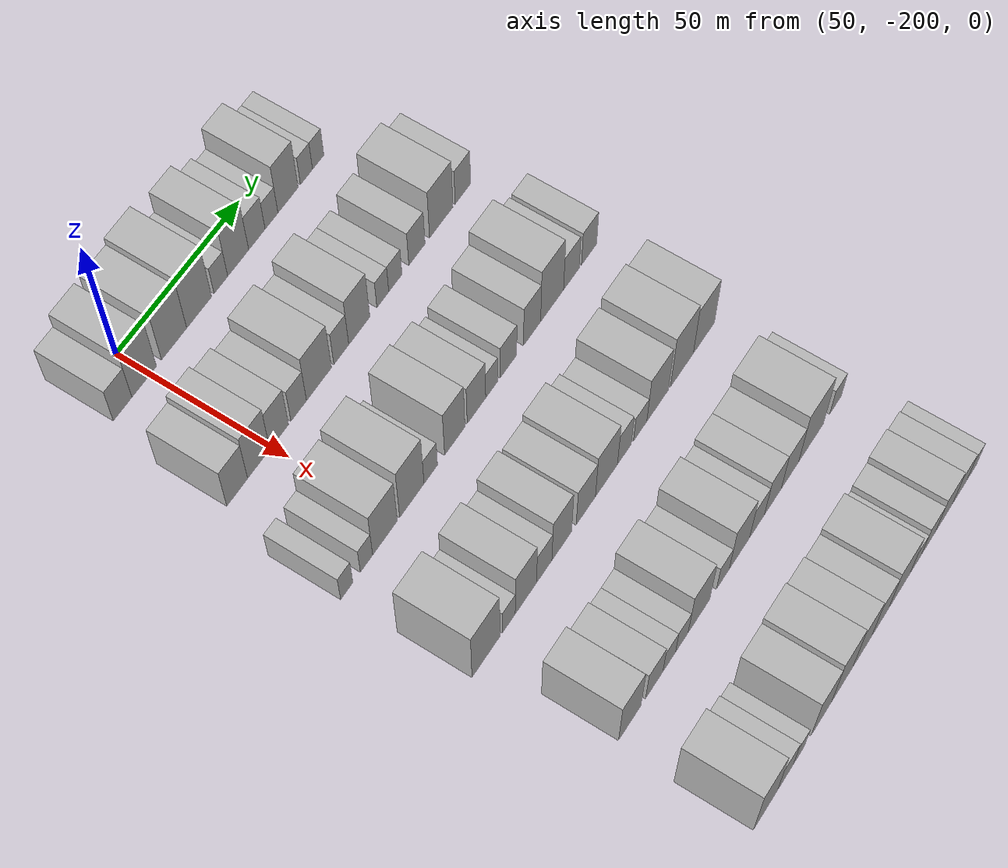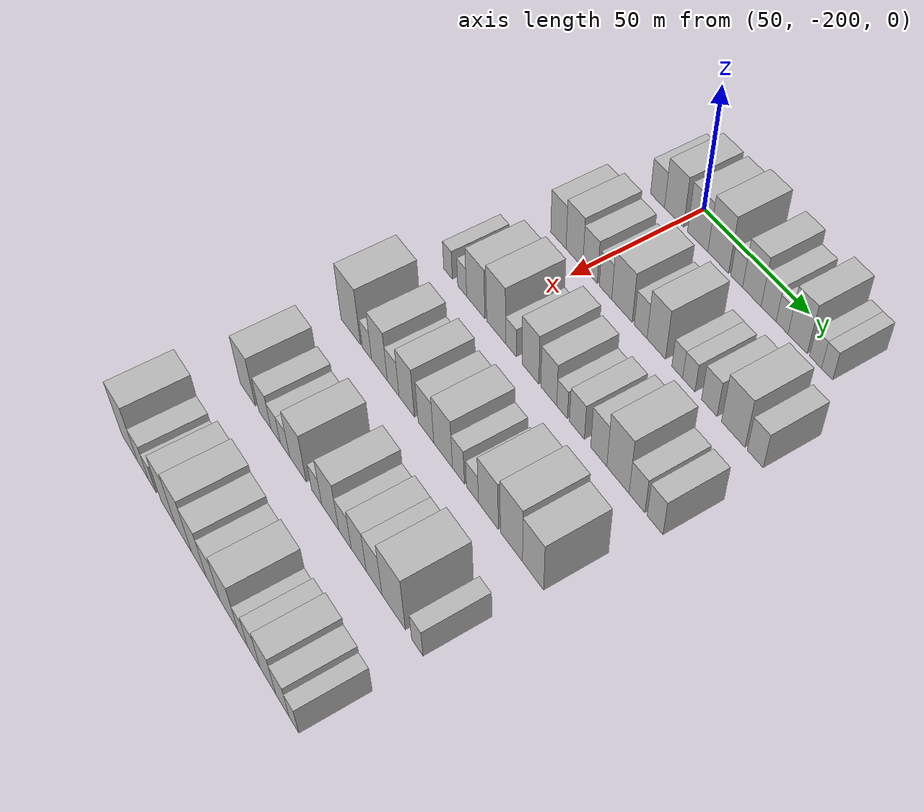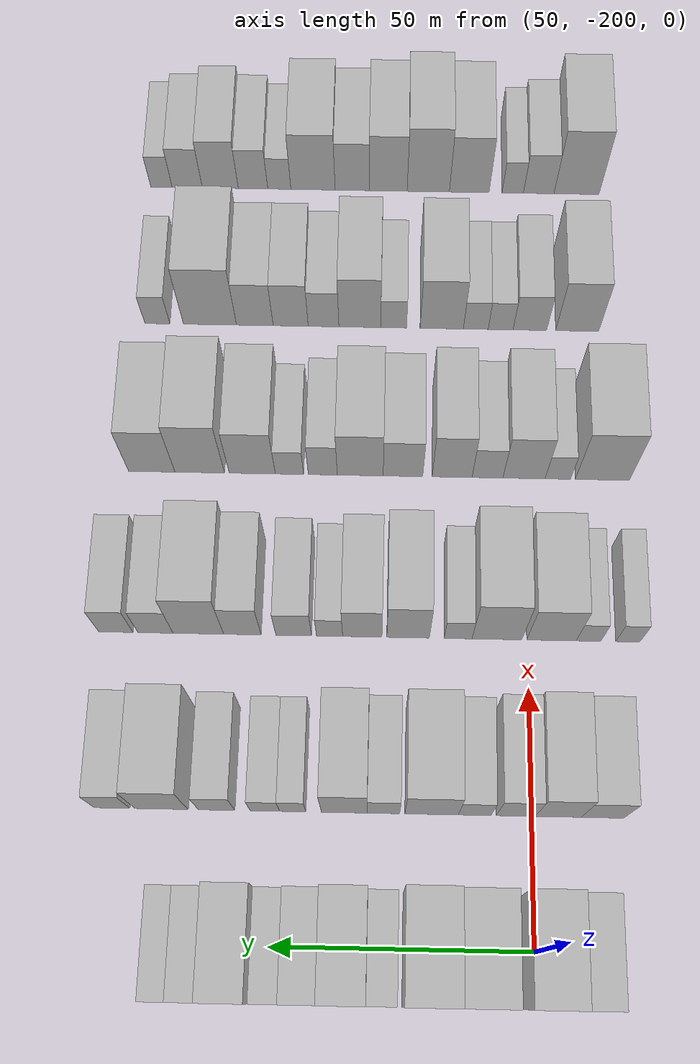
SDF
<sdf version="1.6">
 <world name="default">
  <model name="building_35">
   <static>1</static>
   <pose>50.0000 -210.8692 0 0.000000 0.000000 0.000000</pose>
   <link name="link">
    <pose>0 0 7.50 0 0 0</pose>
    <collision name="collision"><geometry><box><size>20.0000 7.2609 15.0000</size></box></geometry></collision>
    <visual name="visual">
     <cast_shadows>0</cast_shadows>
     <geometry><box><size>20.0000 7.2609 15.0000</size></box></geometry>
     <material>
      <script>
       <uri>model://HANNAS_wall/materials/scripts</uri>
       <uri>model://HANNAS_wall/materials/textures</uri>
       <name>vrc/HANNAS_wall</name>
      </script>
     </material>
    </visual>
   </link>
  </model>
  <model name="building_36">
   <static>1</static>
   <pose>50.0000 -202.3744 0 0.000000 0.000000 0.000000</pose>
   <link name="link">
    <pose>0 0 10.50 0 0 0</pose>
    <collision name="collision"><geometry><box><size>20.0000 9.7287 21.0000</size></box></geometry></collision>
    <visual name="visual">
     <cast_shadows>0</cast_shadows>
     <geometry><box><size>20.0000 9.7287 21.0000</size></box></geometry>
     <material>
      <script>
       <uri>model://HANNAS_wall/materials/scripts</uri>
       <uri>model://HANNAS_wall/materials/textures</uri>
       <name>vrc/HANNAS_wall</name>
      </script>
     </material>
    </visual>
   </link>
  </model>
  <model name="building_37">
   <static>1</static>
   <pose>50.0000 -190.4568 0 0.000000 0.000000 0.000000</pose>
   <link name="link">
    <pose>0 0 10.50 0 0 0</pose>
    <collision name="collision"><geometry><box><size>20.0000 10.1066 21.0000</size></box></geometry></collision>
    <visual name="visual">
     <cast_shadows>0</cast_shadows>
     <geometry><box><size>20.0000 10.1066 21.0000</size></box></geometry>
     <material>
      <script>
       <uri>model://HANNAS_wall/materials/scripts</uri>
       <uri>model://HANNAS_wall/materials/textures</uri>
       <name>vrc/HANNAS_wall</name>
      </script>
     </material>
    </visual>
   </link>
  </model>
  <model name="building_38">
   <static>1</static>
   <pose>50.0000 -180.3454 0 0.000000 0.000000 0.000000</pose>
   <link name="link">
    <pose>0 0 12.00 0 0 0</pose>
    <collision name="collision"><geometry><box><size>20.0000 10.1160 24.0000</size></box></geometry></collision>
    <visual name="visual">
     <cast_shadows>0</cast_shadows>
     <geometry><box><size>20.0000 10.1160 24.0000</size></box></geometry>
     <material>
      <script>
       <uri>model://HANNAS_wall/materials/scripts</uri>
       <uri>model://HANNAS_wall/materials/textures</uri>
       <name>vrc/HANNAS_wall</name>
      </script>
     </material>
    </visual>
   </link>
  </model>
  <model name="building_39">
   <static>1</static>
   <pose>50.0000 -171.4707 0 0.000000 0.000000 0.000000</pose>
   <link name="link">
    <pose>0 0 6.00 0 0 0</pose>
    <collision name="collision"><geometry><box><size>20.0000 5.6335 12.0000</size></box></geometry></collision>
    <visual name="visual">
     <cast_shadows>0</cast_shadows>
     <geometry><box><size>20.0000 5.6335 12.0000</size></box></geometry>
     <material>
      <script>
       <uri>model://HANNAS_wall/materials/scripts</uri>
       <uri>model://HANNAS_wall/materials/textures</uri>
       <name>vrc/HANNAS_wall</name>
      </script>
     </material>
    </visual>
   </link>
  </model>
  <model name="building_40">
   <static>1</static>
   <pose>50.0000 -164.3087 0 0.000000 0.000000 0.000000</pose>
   <link name="link">
    <pose>0 0 10.50 0 0 0</pose>
    <collision name="collision"><geometry><box><size>20.0000 8.6905 21.0000</size></box></geometry></collision>
    <visual name="visual">
     <cast_shadows>0</cast_shadows>
     <geometry><box><size>20.0000 8.6905 21.0000</size></box></geometry>
     <material>
      <script>
       <uri>model://HANNAS_wall/materials/scripts</uri>
       <uri>model://HANNAS_wall/materials/textures</uri>
       <name>vrc/HANNAS_wall</name>
      </script>
     </material>
    </visual>
   </link>
  </model>
  <model name="building_41">
   <static>1</static>
   <pose>50.0000 -156.5307 0 0.000000 0.000000 0.000000</pose>
   <link name="link">
    <pose>0 0 7.50 0 0 0</pose>
    <collision name="collision"><geometry><box><size>20.0000 6.8655 15.0000</size></box></geometry></collision>
    <visual name="visual">
     <cast_shadows>0</cast_shadows>
     <geometry><box><size>20.0000 6.8655 15.0000</size></box></geometry>
     <material>
      <script>
       <uri>model://HANNAS_wall/materials/scripts</uri>
       <uri>model://HANNAS_wall/materials/textures</uri>
       <name>vrc/HANNAS_wall</name>
      </script>
     </material>
    </visual>
   </link>
  </model>
  <model name="building_42">
   <static>1</static>
   <pose>50.0000 -150.3775 0 0.000000 0.000000 0.000000</pose>
   <link name="link">
    <pose>0 0 6.00 0 0 0</pose>
    <collision name="collision"><geometry><box><size>20.0000 5.4410 12.0000</size></box></geometry></collision>
    <visual name="visual">
     <cast_shadows>0</cast_shadows>
     <geometry><box><size>20.0000 5.4410 12.0000</size></box></geometry>
     <material>
      <script>
       <uri>model://HANNAS_wall/materials/scripts</uri>
       <uri>model://HANNAS_wall/materials/textures</uri>
       <name>vrc/HANNAS_wall</name>
      </script>
     </material>
    </visual>
   </link>
  </model>
  <model name="building_43">
   <static>1</static>
   <pose>50.0000 -143.3765 0 0.000000 0.000000 0.000000</pose>
   <link name="link">
    <pose>0 0 10.50 0 0 0</pose>
    <collision name="collision"><geometry><box><size>20.0000 8.5609 21.0000</size></box></geometry></collision>
    <visual name="visual">
     <cast_shadows>0</cast_shadows>
     <geometry><box><size>20.0000 8.5609 21.0000</size></box></geometry>
     <material>
      <script>
       <uri>model://HANNAS_wall/materials/scripts</uri>
       <uri>model://HANNAS_wall/materials/textures</uri>
       <name>vrc/HANNAS_wall</name>
      </script>
     </material>
    </visual>
   </link>
  </model>
  <model name="building_44">
   <static>1</static>
   <pose>50.0000 -135.4817 0 0.000000 0.000000 0.000000</pose>
   <link name="link">
    <pose>0 0 6.00 0 0 0</pose>
    <collision name="collision"><geometry><box><size>20.0000 5.2288 12.0000</size></box></geometry></collision>
    <visual name="visual">
     <cast_shadows>0</cast_shadows>
     <geometry><box><size>20.0000 5.2288 12.0000</size></box></geometry>
     <material>
      <script>
       <uri>model://HANNAS_wall/materials/scripts</uri>
       <uri>model://HANNAS_wall/materials/textures</uri>
       <name>vrc/HANNAS_wall</name>
      </script>
     </material>
    </visual>
   </link>
  </model>
  <model name="building_45">
   <static>1</static>
   <pose>50.0000 -130.4262 0 0.000000 0.000000 0.000000</pose>
   <link name="link">
    <pose>0 0 6.00 0 0 0</pose>
    <collision name="collision"><geometry><box><size>20.0000 4.8821 12.0000</size></box></geometry></collision>
    <visual name="visual">
     <cast_shadows>0</cast_shadows>
     <geometry><box><size>20.0000 4.8821 12.0000</size></box></geometry>
     <material>
      <script>
       <uri>model://HANNAS_wall/materials/scripts</uri>
       <uri>model://HANNAS_wall/materials/textures</uri>
       <name>vrc/HANNAS_wall</name>
      </script>
     </material>
    </visual>
   </link>
  </model>
  <model name="building_146">
   <static>1</static>
   <pose>85.0000 -213.7189 0 0.000000 0.000000 0.000000</pose>
   <link name="link">
    <pose>0 0 9.00 0 0 0</pose>
    <collision name="collision"><geometry><box><size>20.0000 8.2522 18.0000</size></box></geometry></collision>
    <visual name="visual">
     <cast_shadows>0</cast_shadows>
     <geometry><box><size>20.0000 8.2522 18.0000</size></box></geometry>
     <material>
      <script>
       <uri>model://HANNAS_wall/materials/scripts</uri>
       <uri>model://HANNAS_wall/materials/textures</uri>
       <name>vrc/HANNAS_wall</name>
      </script>
     </material>
    </visual>
   </link>
  </model>
  <model name="building_147">
   <static>1</static>
   <pose>85.0000 -205.1508 0 0.000000 0.000000 0.000000</pose>
   <link name="link">
    <pose>0 0 10.50 0 0 0</pose>
    <collision name="collision"><geometry><box><size>20.0000 8.8841 21.0000</size></box></geometry></collision>
    <visual name="visual">
     <cast_shadows>0</cast_shadows>
     <geometry><box><size>20.0000 8.8841 21.0000</size></box></geometry>
     <material>
      <script>
       <uri>model://HANNAS_wall/materials/scripts</uri>
       <uri>model://HANNAS_wall/materials/textures</uri>
       <name>vrc/HANNAS_wall</name>
      </script>
     </material>
    </visual>
   </link>
  </model>
  <model name="building_148">
   <static>1</static>
   <pose>85.0000 -196.9245 0 0.000000 0.000000 0.000000</pose>
   <link name="link">
    <pose>0 0 9.00 0 0 0</pose>
    <collision name="collision"><geometry><box><size>20.0000 7.5684 18.0000</size></box></geometry></collision>
    <visual name="visual">
     <cast_shadows>0</cast_shadows>
     <geometry><box><size>20.0000 7.5684 18.0000</size></box></geometry>
     <material>
      <script>
       <uri>model://HANNAS_wall/materials/scripts</uri>
       <uri>model://HANNAS_wall/materials/textures</uri>
       <name>vrc/HANNAS_wall</name>
      </script>
     </material>
    </visual>
   </link>
  </model>
  <model name="building_149">
   <static>1</static>
   <pose>85.0000 -188.9642 0 0.000000 0.000000 0.000000</pose>
   <link name="link">
    <pose>0 0 7.50 0 0 0</pose>
    <collision name="collision"><geometry><box><size>20.0000 6.3523 15.0000</size></box></geometry></collision>
    <visual name="visual">
     <cast_shadows>0</cast_shadows>
     <geometry><box><size>20.0000 6.3523 15.0000</size></box></geometry>
     <material>
      <script>
       <uri>model://HANNAS_wall/materials/scripts</uri>
       <uri>model://HANNAS_wall/materials/textures</uri>
       <name>vrc/HANNAS_wall</name>
      </script>
     </material>
    </visual>
   </link>
  </model>
  <model name="building_150">
   <static>1</static>
   <pose>85.0000 -180.6318 0 0.000000 0.000000 0.000000</pose>
   <link name="link">
    <pose>0 0 10.50 0 0 0</pose>
    <collision name="collision"><geometry><box><size>20.0000 10.3125 21.0000</size></box></geometry></collision>
    <visual name="visual">
     <cast_shadows>0</cast_shadows>
     <geometry><box><size>20.0000 10.3125 21.0000</size></box></geometry>
     <material>
      <script>
       <uri>model://HANNAS_wall/materials/scripts</uri>
       <uri>model://HANNAS_wall/materials/textures</uri>
       <name>vrc/HANNAS_wall</name>
      </script>
     </material>
    </visual>
   </link>
  </model>
  <model name="building_151">
   <static>1</static>
   <pose>85.0000 -171.3499 0 0.000000 0.000000 0.000000</pose>
   <link name="link">
    <pose>0 0 7.50 0 0 0</pose>
    <collision name="collision"><geometry><box><size>20.0000 6.2512 15.0000</size></box></geometry></collision>
    <visual name="visual">
     <cast_shadows>0</cast_shadows>
     <geometry><box><size>20.0000 6.2512 15.0000</size></box></geometry>
     <material>
      <script>
       <uri>model://HANNAS_wall/materials/scripts</uri>
       <uri>model://HANNAS_wall/materials/textures</uri>
       <name>vrc/HANNAS_wall</name>
      </script>
     </material>
    </visual>
   </link>
  </model>
  <model name="building_152">
   <static>1</static>
   <pose>85.0000 -163.7788 0 0.000000 0.000000 0.000000</pose>
   <link name="link">
    <pose>0 0 10.50 0 0 0</pose>
    <collision name="collision"><geometry><box><size>20.0000 8.8909 21.0000</size></box></geometry></collision>
    <visual name="visual">
     <cast_shadows>0</cast_shadows>
     <geometry><box><size>20.0000 8.8909 21.0000</size></box></geometry>
     <material>
      <script>
       <uri>model://HANNAS_wall/materials/scripts</uri>
       <uri>model://HANNAS_wall/materials/textures</uri>
       <name>vrc/HANNAS_wall</name>
      </script>
     </material>
    </visual>
   </link>
  </model>
  <model name="building_153">
   <static>1</static>
   <pose>85.0000 -153.7945 0 0.000000 0.000000 0.000000</pose>
   <link name="link">
    <pose>0 0 6.00 0 0 0</pose>
    <collision name="collision"><geometry><box><size>20.0000 5.0777 12.0000</size></box></geometry></collision>
    <visual name="visual">
     <cast_shadows>0</cast_shadows>
     <geometry><box><size>20.0000 5.0777 12.0000</size></box></geometry>
     <material>
      <script>
       <uri>model://HANNAS_wall/materials/scripts</uri>
       <uri>model://HANNAS_wall/materials/textures</uri>
       <name>vrc/HANNAS_wall</name>
      </script>
     </material>
    </visual>
   </link>
  </model>
  <model name="building_154">
   <static>1</static>
   <pose>85.0000 -148.4130 0 0.000000 0.000000 0.000000</pose>
   <link name="link">
    <pose>0 0 6.00 0 0 0</pose>
    <collision name="collision"><geometry><box><size>20.0000 5.6853 12.0000</size></box></geometry></collision>
    <visual name="visual">
     <cast_shadows>0</cast_shadows>
     <geometry><box><size>20.0000 5.6853 12.0000</size></box></geometry>
     <material>
      <script>
       <uri>model://HANNAS_wall/materials/scripts</uri>
       <uri>model://HANNAS_wall/materials/textures</uri>
       <name>vrc/HANNAS_wall</name>
      </script>
     </material>
    </visual>
   </link>
  </model>
  <model name="building_155">
   <static>1</static>
   <pose>85.0000 -139.0477 0 0.000000 0.000000 0.000000</pose>
   <link name="link">
    <pose>0 0 7.50 0 0 0</pose>
    <collision name="collision"><geometry><box><size>20.0000 7.0453 15.0000</size></box></geometry></collision>
    <visual name="visual">
     <cast_shadows>0</cast_shadows>
     <geometry><box><size>20.0000 7.0453 15.0000</size></box></geometry>
     <material>
      <script>
       <uri>model://HANNAS_wall/materials/scripts</uri>
       <uri>model://HANNAS_wall/materials/textures</uri>
       <name>vrc/HANNAS_wall</name>
      </script>
     </material>
    </visual>
   </link>
  </model>
  <model name="building_156">
   <static>1</static>
   <pose>85.0000 -128.3696 0 0.000000 0.000000 0.000000</pose>
   <link name="link">
    <pose>0 0 10.50 0 0 0</pose>
    <collision name="collision"><geometry><box><size>20.0000 10.3109 21.0000</size></box></geometry></collision>
    <visual name="visual">
     <cast_shadows>0</cast_shadows>
     <geometry><box><size>20.0000 10.3109 21.0000</size></box></geometry>
     <material>
      <script>
       <uri>model://HANNAS_wall/materials/scripts</uri>
       <uri>model://HANNAS_wall/materials/textures</uri>
       <name>vrc/HANNAS_wall</name>
      </script>
     </material>
    </visual>
   </link>
  </model>
  <model name="building_157">
   <static>1</static>
   <pose>85.0000 -118.7633 0 0.000000 0.000000 0.000000</pose>
   <link name="link">
    <pose>0 0 7.50 0 0 0</pose>
    <collision name="collision"><geometry><box><size>20.0000 6.9016 15.0000</size></box></geometry></collision>
    <visual name="visual">
     <cast_shadows>0</cast_shadows>
     <geometry><box><size>20.0000 6.9016 15.0000</size></box></geometry>
     <material>
      <script>
       <uri>model://HANNAS_wall/materials/scripts</uri>
       <uri>model://HANNAS_wall/materials/textures</uri>
       <name>vrc/HANNAS_wall</name>
      </script>
     </material>
    </visual>
   </link>
  </model>
  <model name="building_270">
   <static>1</static>
   <pose>120.0000 -220.2029 0 0.000000 0.000000 0.000000</pose>
   <link name="link">
    <pose>0 0 6.00 0 0 0</pose>
    <collision name="collision"><geometry><box><size>20.0000 4.8971 12.0000</size></box></geometry></collision>
    <visual name="visual">
     <cast_shadows>0</cast_shadows>
     <geometry><box><size>20.0000 4.8971 12.0000</size></box></geometry>
     <material>
      <script>
       <uri>model://HANNAS_wall/materials/scripts</uri>
       <uri>model://HANNAS_wall/materials/textures</uri>
       <name>vrc/HANNAS_wall</name>
      </script>
     </material>
    </visual>
   </link>
  </model>
  <model name="building_271">
   <static>1</static>
   <pose>120.0000 -212.2641 0 0.000000 0.000000 0.000000</pose>
   <link name="link">
    <pose>0 0 6.00 0 0 0</pose>
    <collision name="collision"><geometry><box><size>20.0000 4.9806 12.0000</size></box></geometry></collision>
    <visual name="visual">
     <cast_shadows>0</cast_shadows>
     <geometry><box><size>20.0000 4.9806 12.0000</size></box></geometry>
     <material>
      <script>
       <uri>model://HANNAS_wall/materials/scripts</uri>
       <uri>model://HANNAS_wall/materials/textures</uri>
       <name>vrc/HANNAS_wall</name>
      </script>
     </material>
    </visual>
   </link>
  </model>
  <model name="building_272">
   <static>1</static>
   <pose>120.0000 -204.7662 0 0.000000 0.000000 0.000000</pose>
   <link name="link">
    <pose>0 0 10.50 0 0 0</pose>
    <collision name="collision"><geometry><box><size>20.0000 10.0150 21.0000</size></box></geometry></collision>
    <visual name="visual">
     <cast_shadows>0</cast_shadows>
     <geometry><box><size>20.0000 10.0150 21.0000</size></box></geometry>
     <material>
      <script>
       <uri>model://HANNAS_wall/materials/scripts</uri>
       <uri>model://HANNAS_wall/materials/textures</uri>
       <name>vrc/HANNAS_wall</name>
      </script>
     </material>
    </visual>
   </link>
  </model>
  <model name="building_273">
   <static>1</static>
   <pose>120.0000 -193.7159 0 0.000000 0.000000 0.000000</pose>
   <link name="link">
    <pose>0 0 12.00 0 0 0</pose>
    <collision name="collision"><geometry><box><size>20.0000 10.0858 24.0000</size></box></geometry></collision>
    <visual name="visual">
     <cast_shadows>0</cast_shadows>
     <geometry><box><size>20.0000 10.0858 24.0000</size></box></geometry>
     <material>
      <script>
       <uri>model://HANNAS_wall/materials/scripts</uri>
       <uri>model://HANNAS_wall/materials/textures</uri>
       <name>vrc/HANNAS_wall</name>
      </script>
     </material>
    </visual>
   </link>
  </model>
  <model name="building_274">
   <static>1</static>
   <pose>120.0000 -185.8575 0 0.000000 0.000000 0.000000</pose>
   <link name="link">
    <pose>0 0 6.00 0 0 0</pose>
    <collision name="collision"><geometry><box><size>20.0000 5.6310 12.0000</size></box></geometry></collision>
    <visual name="visual">
     <cast_shadows>0</cast_shadows>
     <geometry><box><size>20.0000 5.6310 12.0000</size></box></geometry>
     <material>
      <script>
       <uri>model://HANNAS_wall/materials/scripts</uri>
       <uri>model://HANNAS_wall/materials/textures</uri>
       <name>vrc/HANNAS_wall</name>
      </script>
     </material>
    </visual>
   </link>
  </model>
  <model name="building_275">
   <static>1</static>
   <pose>120.0000 -175.7466 0 0.000000 0.000000 0.000000</pose>
   <link name="link">
    <pose>0 0 10.50 0 0 0</pose>
    <collision name="collision"><geometry><box><size>20.0000 8.5907 21.0000</size></box></geometry></collision>
    <visual name="visual">
     <cast_shadows>0</cast_shadows>
     <geometry><box><size>20.0000 8.5907 21.0000</size></box></geometry>
     <material>
      <script>
       <uri>model://HANNAS_wall/materials/scripts</uri>
       <uri>model://HANNAS_wall/materials/textures</uri>
       <name>vrc/HANNAS_wall</name>
      </script>
     </material>
    </visual>
   </link>
  </model>
  <model name="building_276">
   <static>1</static>
   <pose>120.0000 -166.4791 0 0.000000 0.000000 0.000000</pose>
   <link name="link">
    <pose>0 0 9.00 0 0 0</pose>
    <collision name="collision"><geometry><box><size>20.0000 7.9444 18.0000</size></box></geometry></collision>
    <visual name="visual">
     <cast_shadows>0</cast_shadows>
     <geometry><box><size>20.0000 7.9444 18.0000</size></box></geometry>
     <material>
      <script>
       <uri>model://HANNAS_wall/materials/scripts</uri>
       <uri>model://HANNAS_wall/materials/textures</uri>
       <name>vrc/HANNAS_wall</name>
      </script>
     </material>
    </visual>
   </link>
  </model>
  <model name="building_277">
   <static>1</static>
   <pose>120.0000 -159.8644 0 0.000000 0.000000 0.000000</pose>
   <link name="link">
    <pose>0 0 6.00 0 0 0</pose>
    <collision name="collision"><geometry><box><size>20.0000 5.2849 12.0000</size></box></geometry></collision>
    <visual name="visual">
     <cast_shadows>0</cast_shadows>
     <geometry><box><size>20.0000 5.2849 12.0000</size></box></geometry>
     <material>
      <script>
       <uri>model://HANNAS_wall/materials/scripts</uri>
       <uri>model://HANNAS_wall/materials/textures</uri>
       <name>vrc/HANNAS_wall</name>
      </script>
     </material>
    </visual>
   </link>
  </model>
  <model name="building_278">
   <static>1</static>
   <pose>120.0000 -152.6151 0 0.000000 0.000000 0.000000</pose>
   <link name="link">
    <pose>0 0 7.50 0 0 0</pose>
    <collision name="collision"><geometry><box><size>20.0000 7.2136 15.0000</size></box></geometry></collision>
    <visual name="visual">
     <cast_shadows>0</cast_shadows>
     <geometry><box><size>20.0000 7.2136 15.0000</size></box></geometry>
     <material>
      <script>
       <uri>model://HANNAS_wall/materials/scripts</uri>
       <uri>model://HANNAS_wall/materials/textures</uri>
       <name>vrc/HANNAS_wall</name>
      </script>
     </material>
    </visual>
   </link>
  </model>
  <model name="building_279">
   <static>1</static>
   <pose>120.0000 -142.2130 0 0.000000 0.000000 0.000000</pose>
   <link name="link">
    <pose>0 0 9.00 0 0 0</pose>
    <collision name="collision"><geometry><box><size>20.0000 7.5906 18.0000</size></box></geometry></collision>
    <visual name="visual">
     <cast_shadows>0</cast_shadows>
     <geometry><box><size>20.0000 7.5906 18.0000</size></box></geometry>
     <material>
      <script>
       <uri>model://HANNAS_wall/materials/scripts</uri>
       <uri>model://HANNAS_wall/materials/textures</uri>
       <name>vrc/HANNAS_wall</name>
      </script>
     </material>
    </visual>
   </link>
  </model>
  <model name="building_280">
   <static>1</static>
   <pose>120.0000 -133.2742 0 0.000000 0.000000 0.000000</pose>
   <link name="link">
    <pose>0 0 12.00 0 0 0</pose>
    <collision name="collision"><geometry><box><size>20.0000 10.2870 24.0000</size></box></geometry></collision>
    <visual name="visual">
     <cast_shadows>0</cast_shadows>
     <geometry><box><size>20.0000 10.2870 24.0000</size></box></geometry>
     <material>
      <script>
       <uri>model://HANNAS_wall/materials/scripts</uri>
       <uri>model://HANNAS_wall/materials/textures</uri>
       <name>vrc/HANNAS_wall</name>
      </script>
     </material>
    </visual>
   </link>
  </model>
  <model name="building_281">
   <static>1</static>
   <pose>120.0000 -124.5795 0 0.000000 0.000000 0.000000</pose>
   <link name="link">
    <pose>0 0 7.50 0 0 0</pose>
    <collision name="collision"><geometry><box><size>20.0000 7.1023 15.0000</size></box></geometry></collision>
    <visual name="visual">
     <cast_shadows>0</cast_shadows>
     <geometry><box><size>20.0000 7.1023 15.0000</size></box></geometry>
     <material>
      <script>
       <uri>model://HANNAS_wall/materials/scripts</uri>
       <uri>model://HANNAS_wall/materials/textures</uri>
       <name>vrc/HANNAS_wall</name>
      </script>
     </material>
    </visual>
   </link>
  </model>
  <model name="building_282">
   <static>1</static>
   <pose>120.0000 -116.5372 0 0.000000 0.000000 0.000000</pose>
   <link name="link">
    <pose>0 0 7.50 0 0 0</pose>
    <collision name="collision"><geometry><box><size>20.0000 6.9824 15.0000</size></box></geometry></collision>
    <visual name="visual">
     <cast_shadows>0</cast_shadows>
     <geometry><box><size>20.0000 6.9824 15.0000</size></box></geometry>
     <material>
      <script>
       <uri>model://HANNAS_wall/materials/scripts</uri>
       <uri>model://HANNAS_wall/materials/textures</uri>
       <name>vrc/HANNAS_wall</name>
      </script>
     </material>
    </visual>
   </link>
  </model>
  <model name="building_391">
   <static>1</static>
   <pose>155.0000 -216.4428 0 0.000000 0.000000 0.000000</pose>
   <link name="link">
    <pose>0 0 12.00 0 0 0</pose>
    <collision name="collision"><geometry><box><size>20.0000 11.4443 24.0000</size></box></geometry></collision>
    <visual name="visual">
     <cast_shadows>0</cast_shadows>
     <geometry><box><size>20.0000 11.4443 24.0000</size></box></geometry>
     <material>
      <script>
       <uri>model://HANNAS_wall/materials/scripts</uri>
       <uri>model://HANNAS_wall/materials/textures</uri>
       <name>vrc/HANNAS_wall</name>
      </script>
     </material>
    </visual>
   </link>
  </model>
  <model name="building_392">
   <static>1</static>
   <pose>155.0000 -207.0316 0 0.000000 0.000000 0.000000</pose>
   <link name="link">
    <pose>0 0 6.00 0 0 0</pose>
    <collision name="collision"><geometry><box><size>20.0000 5.3781 12.0000</size></box></geometry></collision>
    <visual name="visual">
     <cast_shadows>0</cast_shadows>
     <geometry><box><size>20.0000 5.3781 12.0000</size></box></geometry>
     <material>
      <script>
       <uri>model://HANNAS_wall/materials/scripts</uri>
       <uri>model://HANNAS_wall/materials/textures</uri>
       <name>vrc/HANNAS_wall</name>
      </script>
     </material>
    </visual>
   </link>
  </model>
  <model name="building_393">
   <static>1</static>
   <pose>155.0000 -199.8788 0 0.000000 0.000000 0.000000</pose>
   <link name="link">
    <pose>0 0 10.50 0 0 0</pose>
    <collision name="collision"><geometry><box><size>20.0000 8.9275 21.0000</size></box></geometry></collision>
    <visual name="visual">
     <cast_shadows>0</cast_shadows>
     <geometry><box><size>20.0000 8.9275 21.0000</size></box></geometry>
     <material>
      <script>
       <uri>model://HANNAS_wall/materials/scripts</uri>
       <uri>model://HANNAS_wall/materials/textures</uri>
       <name>vrc/HANNAS_wall</name>
      </script>
     </material>
    </visual>
   </link>
  </model>
  <model name="building_394">
   <static>1</static>
   <pose>155.0000 -192.1633 0 0.000000 0.000000 0.000000</pose>
   <link name="link">
    <pose>0 0 7.50 0 0 0</pose>
    <collision name="collision"><geometry><box><size>20.0000 6.5035 15.0000</size></box></geometry></collision>
    <visual name="visual">
     <cast_shadows>0</cast_shadows>
     <geometry><box><size>20.0000 6.5035 15.0000</size></box></geometry>
     <material>
      <script>
       <uri>model://HANNAS_wall/materials/scripts</uri>
       <uri>model://HANNAS_wall/materials/textures</uri>
       <name>vrc/HANNAS_wall</name>
      </script>
     </material>
    </visual>
   </link>
  </model>
  <model name="building_395">
   <static>1</static>
   <pose>155.0000 -184.7049 0 0.000000 0.000000 0.000000</pose>
   <link name="link">
    <pose>0 0 10.50 0 0 0</pose>
    <collision name="collision"><geometry><box><size>20.0000 8.4133 21.0000</size></box></geometry></collision>
    <visual name="visual">
     <cast_shadows>0</cast_shadows>
     <geometry><box><size>20.0000 8.4133 21.0000</size></box></geometry>
     <material>
      <script>
       <uri>model://HANNAS_wall/materials/scripts</uri>
       <uri>model://HANNAS_wall/materials/textures</uri>
       <name>vrc/HANNAS_wall</name>
      </script>
     </material>
    </visual>
   </link>
  </model>
  <model name="building_396">
   <static>1</static>
   <pose>155.0000 -174.3220 0 0.000000 0.000000 0.000000</pose>
   <link name="link">
    <pose>0 0 9.00 0 0 0</pose>
    <collision name="collision"><geometry><box><size>20.0000 8.3525 18.0000</size></box></geometry></collision>
    <visual name="visual">
     <cast_shadows>0</cast_shadows>
     <geometry><box><size>20.0000 8.3525 18.0000</size></box></geometry>
     <material>
      <script>
       <uri>model://HANNAS_wall/materials/scripts</uri>
       <uri>model://HANNAS_wall/materials/textures</uri>
       <name>vrc/HANNAS_wall</name>
      </script>
     </material>
    </visual>
   </link>
  </model>
  <model name="building_397">
   <static>1</static>
   <pose>155.0000 -165.2965 0 0.000000 0.000000 0.000000</pose>
   <link name="link">
    <pose>0 0 10.50 0 0 0</pose>
    <collision name="collision"><geometry><box><size>20.0000 9.6985 21.0000</size></box></geometry></collision>
    <visual name="visual">
     <cast_shadows>0</cast_shadows>
     <geometry><box><size>20.0000 9.6985 21.0000</size></box></geometry>
     <material>
      <script>
       <uri>model://HANNAS_wall/materials/scripts</uri>
       <uri>model://HANNAS_wall/materials/textures</uri>
       <name>vrc/HANNAS_wall</name>
      </script>
     </material>
    </visual>
   </link>
  </model>
  <model name="building_398">
   <static>1</static>
   <pose>155.0000 -157.3880 0 0.000000 0.000000 0.000000</pose>
   <link name="link">
    <pose>0 0 7.50 0 0 0</pose>
    <collision name="collision"><geometry><box><size>20.0000 6.1186 15.0000</size></box></geometry></collision>
    <visual name="visual">
     <cast_shadows>0</cast_shadows>
     <geometry><box><size>20.0000 6.1186 15.0000</size></box></geometry>
     <material>
      <script>
       <uri>model://HANNAS_wall/materials/scripts</uri>
       <uri>model://HANNAS_wall/materials/textures</uri>
       <name>vrc/HANNAS_wall</name>
      </script>
     </material>
    </visual>
   </link>
  </model>
  <model name="building_399">
   <static>1</static>
   <pose>155.0000 -150.3390 0 0.000000 0.000000 0.000000</pose>
   <link name="link">
    <pose>0 0 6.00 0 0 0</pose>
    <collision name="collision"><geometry><box><size>20.0000 5.9793 12.0000</size></box></geometry></collision>
    <visual name="visual">
     <cast_shadows>0</cast_shadows>
     <geometry><box><size>20.0000 5.9793 12.0000</size></box></geometry>
     <material>
      <script>
       <uri>model://HANNAS_wall/materials/scripts</uri>
       <uri>model://HANNAS_wall/materials/textures</uri>
       <name>vrc/HANNAS_wall</name>
      </script>
     </material>
    </visual>
   </link>
  </model>
  <model name="building_400">
   <static>1</static>
   <pose>155.0000 -142.4745 0 0.000000 0.000000 0.000000</pose>
   <link name="link">
    <pose>0 0 10.50 0 0 0</pose>
    <collision name="collision"><geometry><box><size>20.0000 9.7497 21.0000</size></box></geometry></collision>
    <visual name="visual">
     <cast_shadows>0</cast_shadows>
     <geometry><box><size>20.0000 9.7497 21.0000</size></box></geometry>
     <material>
      <script>
       <uri>model://HANNAS_wall/materials/scripts</uri>
       <uri>model://HANNAS_wall/materials/textures</uri>
       <name>vrc/HANNAS_wall</name>
      </script>
     </material>
    </visual>
   </link>
  </model>
  <model name="building_401">
   <static>1</static>
   <pose>155.0000 -131.3500 0 0.000000 0.000000 0.000000</pose>
   <link name="link">
    <pose>0 0 12.00 0 0 0</pose>
    <collision name="collision"><geometry><box><size>20.0000 10.4994 24.0000</size></box></geometry></collision>
    <visual name="visual">
     <cast_shadows>0</cast_shadows>
     <geometry><box><size>20.0000 10.4994 24.0000</size></box></geometry>
     <material>
      <script>
       <uri>model://HANNAS_wall/materials/scripts</uri>
       <uri>model://HANNAS_wall/materials/textures</uri>
       <name>vrc/HANNAS_wall</name>
      </script>
     </material>
    </visual>
   </link>
  </model>
  <model name="building_402">
   <static>1</static>
   <pose>155.0000 -121.1897 0 0.000000 0.000000 0.000000</pose>
   <link name="link">
    <pose>0 0 10.50 0 0 0</pose>
    <collision name="collision"><geometry><box><size>20.0000 9.8212 21.0000</size></box></geometry></collision>
    <visual name="visual">
     <cast_shadows>0</cast_shadows>
     <geometry><box><size>20.0000 9.8212 21.0000</size></box></geometry>
     <material>
      <script>
       <uri>model://HANNAS_wall/materials/scripts</uri>
       <uri>model://HANNAS_wall/materials/textures</uri>
       <name>vrc/HANNAS_wall</name>
      </script>
     </material>
    </visual>
   </link>
  </model>
  <model name="building_520">
   <static>1</static>
   <pose>190.0000 -212.2818 0 0.000000 0.000000 0.000000</pose>
   <link name="link">
    <pose>0 0 10.50 0 0 0</pose>
    <collision name="collision"><geometry><box><size>20.0000 9.4393 21.0000</size></box></geometry></collision>
    <visual name="visual">
     <cast_shadows>0</cast_shadows>
     <geometry><box><size>20.0000 9.4393 21.0000</size></box></geometry>
     <material>
      <script>
       <uri>model://HANNAS_wall/materials/scripts</uri>
       <uri>model://HANNAS_wall/materials/textures</uri>
       <name>vrc/HANNAS_wall</name>
      </script>
     </material>
    </visual>
   </link>
  </model>
  <model name="building_521">
   <static>1</static>
   <pose>190.0000 -201.8633 0 0.000000 0.000000 0.000000</pose>
   <link name="link">
    <pose>0 0 7.50 0 0 0</pose>
    <collision name="collision"><geometry><box><size>20.0000 7.3977 15.0000</size></box></geometry></collision>
    <visual name="visual">
     <cast_shadows>0</cast_shadows>
     <geometry><box><size>20.0000 7.3977 15.0000</size></box></geometry>
     <material>
      <script>
       <uri>model://HANNAS_wall/materials/scripts</uri>
       <uri>model://HANNAS_wall/materials/textures</uri>
       <name>vrc/HANNAS_wall</name>
      </script>
     </material>
    </visual>
   </link>
  </model>
  <model name="building_522">
   <static>1</static>
   <pose>190.0000 -195.4323 0 0.000000 0.000000 0.000000</pose>
   <link name="link">
    <pose>0 0 6.00 0 0 0</pose>
    <collision name="collision"><geometry><box><size>20.0000 5.4643 12.0000</size></box></geometry></collision>
    <visual name="visual">
     <cast_shadows>0</cast_shadows>
     <geometry><box><size>20.0000 5.4643 12.0000</size></box></geometry>
     <material>
      <script>
       <uri>model://HANNAS_wall/materials/scripts</uri>
       <uri>model://HANNAS_wall/materials/textures</uri>
       <name>vrc/HANNAS_wall</name>
      </script>
     </material>
    </visual>
   </link>
  </model>
  <model name="building_523">
   <static>1</static>
   <pose>190.0000 -189.9667 0 0.000000 0.000000 0.000000</pose>
   <link name="link">
    <pose>0 0 6.00 0 0 0</pose>
    <collision name="collision"><geometry><box><size>20.0000 5.4667 12.0000</size></box></geometry></collision>
    <visual name="visual">
     <cast_shadows>0</cast_shadows>
     <geometry><box><size>20.0000 5.4667 12.0000</size></box></geometry>
     <material>
      <script>
       <uri>model://HANNAS_wall/materials/scripts</uri>
       <uri>model://HANNAS_wall/materials/textures</uri>
       <name>vrc/HANNAS_wall</name>
      </script>
     </material>
    </visual>
   </link>
  </model>
  <model name="building_524">
   <static>1</static>
   <pose>190.0000 -182.4713 0 0.000000 0.000000 0.000000</pose>
   <link name="link">
    <pose>0 0 10.50 0 0 0</pose>
    <collision name="collision"><geometry><box><size>20.0000 9.5241 21.0000</size></box></geometry></collision>
    <visual name="visual">
     <cast_shadows>0</cast_shadows>
     <geometry><box><size>20.0000 9.5241 21.0000</size></box></geometry>
     <material>
      <script>
       <uri>model://HANNAS_wall/materials/scripts</uri>
       <uri>model://HANNAS_wall/materials/textures</uri>
       <name>vrc/HANNAS_wall</name>
      </script>
     </material>
    </visual>
   </link>
  </model>
  <model name="building_525">
   <static>1</static>
   <pose>190.0000 -171.8796 0 0.000000 0.000000 0.000000</pose>
   <link name="link">
    <pose>0 0 6.00 0 0 0</pose>
    <collision name="collision"><geometry><box><size>20.0000 5.6593 12.0000</size></box></geometry></collision>
    <visual name="visual">
     <cast_shadows>0</cast_shadows>
     <geometry><box><size>20.0000 5.6593 12.0000</size></box></geometry>
     <material>
      <script>
       <uri>model://HANNAS_wall/materials/scripts</uri>
       <uri>model://HANNAS_wall/materials/textures</uri>
       <name>vrc/HANNAS_wall</name>
      </script>
     </material>
    </visual>
   </link>
  </model>
  <model name="building_526">
   <static>1</static>
   <pose>190.0000 -164.4408 0 0.000000 0.000000 0.000000</pose>
   <link name="link">
    <pose>0 0 10.50 0 0 0</pose>
    <collision name="collision"><geometry><box><size>20.0000 9.2184 21.0000</size></box></geometry></collision>
    <visual name="visual">
     <cast_shadows>0</cast_shadows>
     <geometry><box><size>20.0000 9.2184 21.0000</size></box></geometry>
     <material>
      <script>
       <uri>model://HANNAS_wall/materials/scripts</uri>
       <uri>model://HANNAS_wall/materials/textures</uri>
       <name>vrc/HANNAS_wall</name>
      </script>
     </material>
    </visual>
   </link>
  </model>
  <model name="building_527">
   <static>1</static>
   <pose>190.0000 -156.4508 0 0.000000 0.000000 0.000000</pose>
   <link name="link">
    <pose>0 0 7.50 0 0 0</pose>
    <collision name="collision"><geometry><box><size>20.0000 6.7615 15.0000</size></box></geometry></collision>
    <visual name="visual">
     <cast_shadows>0</cast_shadows>
     <geometry><box><size>20.0000 6.7615 15.0000</size></box></geometry>
     <material>
      <script>
       <uri>model://HANNAS_wall/materials/scripts</uri>
       <uri>model://HANNAS_wall/materials/textures</uri>
       <name>vrc/HANNAS_wall</name>
      </script>
     </material>
    </visual>
   </link>
  </model>
  <model name="building_528">
   <static>1</static>
   <pose>190.0000 -149.2090 0 0.000000 0.000000 0.000000</pose>
   <link name="link">
    <pose>0 0 9.00 0 0 0</pose>
    <collision name="collision"><geometry><box><size>20.0000 7.7221 18.0000</size></box></geometry></collision>
    <visual name="visual">
     <cast_shadows>0</cast_shadows>
     <geometry><box><size>20.0000 7.7221 18.0000</size></box></geometry>
     <material>
      <script>
       <uri>model://HANNAS_wall/materials/scripts</uri>
       <uri>model://HANNAS_wall/materials/textures</uri>
       <name>vrc/HANNAS_wall</name>
      </script>
     </material>
    </visual>
   </link>
  </model>
  <model name="building_529">
   <static>1</static>
   <pose>190.0000 -141.3030 0 0.000000 0.000000 0.000000</pose>
   <link name="link">
    <pose>0 0 9.00 0 0 0</pose>
    <collision name="collision"><geometry><box><size>20.0000 8.0900 18.0000</size></box></geometry></collision>
    <visual name="visual">
     <cast_shadows>0</cast_shadows>
     <geometry><box><size>20.0000 8.0900 18.0000</size></box></geometry>
     <material>
      <script>
       <uri>model://HANNAS_wall/materials/scripts</uri>
       <uri>model://HANNAS_wall/materials/textures</uri>
       <name>vrc/HANNAS_wall</name>
      </script>
     </material>
    </visual>
   </link>
  </model>
  <model name="building_530">
   <static>1</static>
   <pose>190.0000 -131.4023 0 0.000000 0.000000 0.000000</pose>
   <link name="link">
    <pose>0 0 12.00 0 0 0</pose>
    <collision name="collision"><geometry><box><size>20.0000 11.7113 24.0000</size></box></geometry></collision>
    <visual name="visual">
     <cast_shadows>0</cast_shadows>
     <geometry><box><size>20.0000 11.7113 24.0000</size></box></geometry>
     <material>
      <script>
       <uri>model://HANNAS_wall/materials/scripts</uri>
       <uri>model://HANNAS_wall/materials/textures</uri>
       <name>vrc/HANNAS_wall</name>
      </script>
     </material>
    </visual>
   </link>
  </model>
  <model name="building_531">
   <static>1</static>
   <pose>190.0000 -119.7828 0 0.000000 0.000000 0.000000</pose>
   <link name="link">
    <pose>0 0 6.00 0 0 0</pose>
    <collision name="collision"><geometry><box><size>20.0000 5.5277 12.0000</size></box></geometry></collision>
    <visual name="visual">
     <cast_shadows>0</cast_shadows>
     <geometry><box><size>20.0000 5.5277 12.0000</size></box></geometry>
     <material>
      <script>
       <uri>model://HANNAS_wall/materials/scripts</uri>
       <uri>model://HANNAS_wall/materials/textures</uri>
       <name>vrc/HANNAS_wall</name>
      </script>
     </material>
    </visual>
   </link>
  </model>
  <model name="building_642">
   <static>1</static>
   <pose>225.0000 -213.2811 0 0.000000 0.000000 0.000000</pose>
   <link name="link">
    <pose>0 0 12.00 0 0 0</pose>
    <collision name="collision"><geometry><box><size>20.0000 10.3077 24.0000</size></box></geometry></collision>
    <visual name="visual">
     <cast_shadows>0</cast_shadows>
     <geometry><box><size>20.0000 10.3077 24.0000</size></box></geometry>
     <material>
      <script>
       <uri>model://HANNAS_wall/materials/scripts</uri>
       <uri>model://HANNAS_wall/materials/textures</uri>
       <name>vrc/HANNAS_wall</name>
      </script>
     </material>
    </visual>
   </link>
  </model>
  <model name="building_643">
   <static>1</static>
   <pose>225.0000 -204.6278 0 0.000000 0.000000 0.000000</pose>
   <link name="link">
    <pose>0 0 7.50 0 0 0</pose>
    <collision name="collision"><geometry><box><size>20.0000 6.9988 15.0000</size></box></geometry></collision>
    <visual name="visual">
     <cast_shadows>0</cast_shadows>
     <geometry><box><size>20.0000 6.9988 15.0000</size></box></geometry>
     <material>
      <script>
       <uri>model://HANNAS_wall/materials/scripts</uri>
       <uri>model://HANNAS_wall/materials/textures</uri>
       <name>vrc/HANNAS_wall</name>
      </script>
     </material>
    </visual>
   </link>
  </model>
  <model name="building_644">
   <static>1</static>
   <pose>225.0000 -198.6982 0 0.000000 0.000000 0.000000</pose>
   <link name="link">
    <pose>0 0 6.00 0 0 0</pose>
    <collision name="collision"><geometry><box><size>20.0000 4.8604 12.0000</size></box></geometry></collision>
    <visual name="visual">
     <cast_shadows>0</cast_shadows>
     <geometry><box><size>20.0000 4.8604 12.0000</size></box></geometry>
     <material>
      <script>
       <uri>model://HANNAS_wall/materials/scripts</uri>
       <uri>model://HANNAS_wall/materials/textures</uri>
       <name>vrc/HANNAS_wall</name>
      </script>
     </material>
    </visual>
   </link>
  </model>
  <model name="building_645">
   <static>1</static>
   <pose>225.0000 -188.7262 0 0.000000 0.000000 0.000000</pose>
   <link name="link">
    <pose>0 0 10.50 0 0 0</pose>
    <collision name="collision"><geometry><box><size>20.0000 9.0837 21.0000</size></box></geometry></collision>
    <visual name="visual">
     <cast_shadows>0</cast_shadows>
     <geometry><box><size>20.0000 9.0837 21.0000</size></box></geometry>
     <material>
      <script>
       <uri>model://HANNAS_wall/materials/scripts</uri>
       <uri>model://HANNAS_wall/materials/textures</uri>
       <name>vrc/HANNAS_wall</name>
      </script>
     </material>
    </visual>
   </link>
  </model>
  <model name="building_646">
   <static>1</static>
   <pose>225.0000 -179.3391 0 0.000000 0.000000 0.000000</pose>
   <link name="link">
    <pose>0 0 12.00 0 0 0</pose>
    <collision name="collision"><geometry><box><size>20.0000 9.6905 24.0000</size></box></geometry></collision>
    <visual name="visual">
     <cast_shadows>0</cast_shadows>
     <geometry><box><size>20.0000 9.6905 24.0000</size></box></geometry>
     <material>
      <script>
       <uri>model://HANNAS_wall/materials/scripts</uri>
       <uri>model://HANNAS_wall/materials/textures</uri>
       <name>vrc/HANNAS_wall</name>
      </script>
     </material>
    </visual>
   </link>
  </model>
  <model name="building_647">
   <static>1</static>
   <pose>225.0000 -170.1691 0 0.000000 0.000000 0.000000</pose>
   <link name="link">
    <pose>0 0 10.50 0 0 0</pose>
    <collision name="collision"><geometry><box><size>20.0000 8.6496 21.0000</size></box></geometry></collision>
    <visual name="visual">
     <cast_shadows>0</cast_shadows>
     <geometry><box><size>20.0000 8.6496 21.0000</size></box></geometry>
     <material>
      <script>
       <uri>model://HANNAS_wall/materials/scripts</uri>
       <uri>model://HANNAS_wall/materials/textures</uri>
       <name>vrc/HANNAS_wall</name>
      </script>
     </material>
    </visual>
   </link>
  </model>
  <model name="building_648">
   <static>1</static>
   <pose>225.0000 -161.9239 0 0.000000 0.000000 0.000000</pose>
   <link name="link">
    <pose>0 0 9.00 0 0 0</pose>
    <collision name="collision"><geometry><box><size>20.0000 7.8408 18.0000</size></box></geometry></collision>
    <visual name="visual">
     <cast_shadows>0</cast_shadows>
     <geometry><box><size>20.0000 7.8408 18.0000</size></box></geometry>
     <material>
      <script>
       <uri>model://HANNAS_wall/materials/scripts</uri>
       <uri>model://HANNAS_wall/materials/textures</uri>
       <name>vrc/HANNAS_wall</name>
      </script>
     </material>
    </visual>
   </link>
  </model>
  <model name="building_649">
   <static>1</static>
   <pose>225.0000 -152.9293 0 0.000000 0.000000 0.000000</pose>
   <link name="link">
    <pose>0 0 10.50 0 0 0</pose>
    <collision name="collision"><geometry><box><size>20.0000 10.1484 21.0000</size></box></geometry></collision>
    <visual name="visual">
     <cast_shadows>0</cast_shadows>
     <geometry><box><size>20.0000 10.1484 21.0000</size></box></geometry>
     <material>
      <script>
       <uri>model://HANNAS_wall/materials/scripts</uri>
       <uri>model://HANNAS_wall/materials/textures</uri>
       <name>vrc/HANNAS_wall</name>
      </script>
     </material>
    </visual>
   </link>
  </model>
  <model name="building_650">
   <static>1</static>
   <pose>225.0000 -145.2027 0 0.000000 0.000000 0.000000</pose>
   <link name="link">
    <pose>0 0 6.00 0 0 0</pose>
    <collision name="collision"><geometry><box><size>20.0000 5.3048 12.0000</size></box></geometry></collision>
    <visual name="visual">
     <cast_shadows>0</cast_shadows>
     <geometry><box><size>20.0000 5.3048 12.0000</size></box></geometry>
     <material>
      <script>
       <uri>model://HANNAS_wall/materials/scripts</uri>
       <uri>model://HANNAS_wall/materials/textures</uri>
       <name>vrc/HANNAS_wall</name>
      </script>
     </material>
    </visual>
   </link>
  </model>
  <model name="building_651">
   <static>1</static>
   <pose>225.0000 -139.1708 0 0.000000 0.000000 0.000000</pose>
   <link name="link">
    <pose>0 0 7.50 0 0 0</pose>
    <collision name="collision"><geometry><box><size>20.0000 6.7589 15.0000</size></box></geometry></collision>
    <visual name="visual">
     <cast_shadows>0</cast_shadows>
     <geometry><box><size>20.0000 6.7589 15.0000</size></box></geometry>
     <material>
      <script>
       <uri>model://HANNAS_wall/materials/scripts</uri>
       <uri>model://HANNAS_wall/materials/textures</uri>
       <name>vrc/HANNAS_wall</name>
      </script>
     </material>
    </visual>
   </link>
  </model>
  <model name="building_652">
   <static>1</static>
   <pose>225.0000 -131.6578 0 0.000000 0.000000 0.000000</pose>
   <link name="link">
    <pose>0 0 9.00 0 0 0</pose>
    <collision name="collision"><geometry><box><size>20.0000 8.2672 18.0000</size></box></geometry></collision>
    <visual name="visual">
     <cast_shadows>0</cast_shadows>
     <geometry><box><size>20.0000 8.2672 18.0000</size></box></geometry>
     <material>
      <script>
       <uri>model://HANNAS_wall/materials/scripts</uri>
       <uri>model://HANNAS_wall/materials/textures</uri>
       <name>vrc/HANNAS_wall</name>
      </script>
     </material>
    </visual>
   </link>
  </model>
  <model name="building_653">
   <static>1</static>
   <pose>225.0000 -124.0615 0 0.000000 0.000000 0.000000</pose>
   <link name="link">
    <pose>0 0 7.50 0 0 0</pose>
    <collision name="collision"><geometry><box><size>20.0000 6.9254 15.0000</size></box></geometry></collision>
    <visual name="visual">
     <cast_shadows>0</cast_shadows>
     <geometry><box><size>20.0000 6.9254 15.0000</size></box></geometry>
     <material>
      <script>
       <uri>model://HANNAS_wall/materials/scripts</uri>
       <uri>model://HANNAS_wall/materials/textures</uri>
       <name>vrc/HANNAS_wall</name>
      </script>
     </material>
    </visual>
   </link>
  </model>
  <model name="building_654">
   <static>1</static>
   <pose>225.0000 -118.1499 0 0.000000 0.000000 0.000000</pose>
   <link name="link">
    <pose>0 0 6.00 0 0 0</pose>
    <collision name="collision"><geometry><box><size>20.0000 4.8979 12.0000</size></box></geometry></collision>
    <visual name="visual">
     <cast_shadows>0</cast_shadows>
     <geometry><box><size>20.0000 4.8979 12.0000</size></box></geometry>
     <material>
      <script>
       <uri>model://HANNAS_wall/materials/scripts</uri>
       <uri>model://HANNAS_wall/materials/textures</uri>
       <name>vrc/HANNAS_wall</name>
      </script>
     </material>
    </visual>
   </link>
  </model>
 </world>
</sdf>
